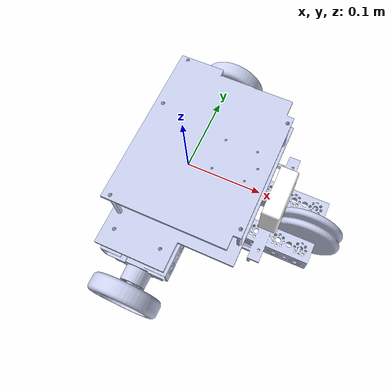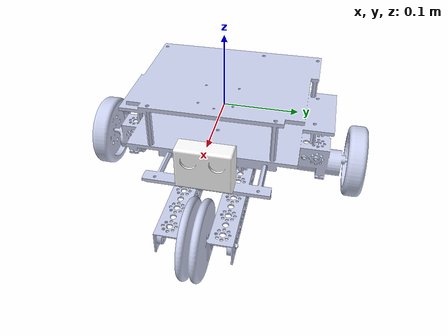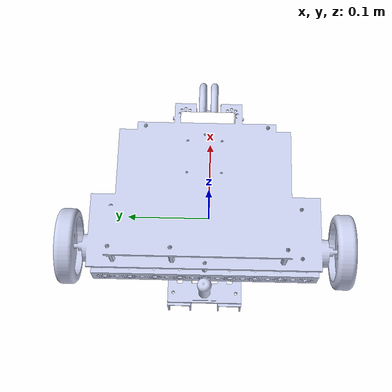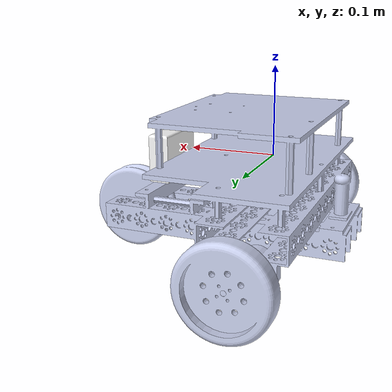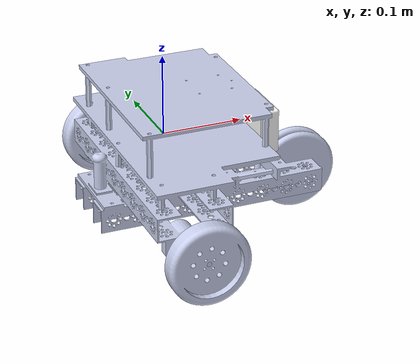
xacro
<?xml version="1.0"?>
<robot xmlns:xacro="http://www.ros.org/wiki/xacro"
  name="autobot">
  <link
    name="base_link">
    <inertial>
      <origin
        xyz="0.012692 0.0050409 -0.025738"
        rpy="0 0 0" />
      <mass
        value="0.8044" />
      <inertia
        ixx="0.0026664"
        ixy="1.82E-05"
        ixz="2.9353E-07"
        iyy="0.0015515"
        iyz="6.5283E-11"
        izz="0.0041284" />
    </inertial>
    <visual>
      <origin
        xyz="0 0 0"
        rpy="0 0 0" />
      <geometry>
        <mesh
          filename="package://autobot/meshes/base_link.STL" />
      </geometry>
      <material
        name="">
        <color
          rgba="0.79216 0.81961 0.93333 1" />
      </material>
    </visual>
    <collision>
      <origin
        xyz="0 0 0"
        rpy="0 0 0" />
      <geometry>
        <mesh
          filename="package://autobot/meshes/base_link.STL" />
      </geometry>
    </collision>
  </link>

<link name="right_wheel">
    <inertial>
        <origin xyz="-1.1077E-07 0.0035 -8.1377E-05" rpy="0 0 0" />
        <mass value="0.10364" />
        <inertia ixx="8.7625E-05" ixy="1.349E-18" ixz="-1.8576E-20" iyy="0.00016817" iyz="-3.0937E-19" izz="8.7625E-05" />
    </inertial>
    <visual>
        <origin xyz="0 0 0" rpy="0 0 0" />
        <geometry>
            <mesh filename="package://autobot/meshes/right_wheel.STL" />
        </geometry>
        <material name="">
            <color rgba="0.79608 0.82353 0.93725 1" />
        </material>
    </visual>
    <collision>
        <origin xyz="0 0 0" rpy="0 0 0" />
        <geometry>
            <mesh filename="package://autobot/meshes/right_wheel.STL" />
        </geometry>
    </collision>
</link>

<joint name="right_wheel_joint" type="continuous">
    <origin xyz="-0.016418 -0.18164 -0.079762" rpy="0 0 0" />
    <parent link="base_link" />
    <child link="right_wheel" />
    <axis xyz="0 1 0" /> <!-- Aligned with the y-axis -->
    <limit effort="10" velocity="10" />
    <dynamics damping="0.1" friction="0.1" />
</joint>

 <link name="left_wheel">
    <inertial>
        <origin xyz="-1.534E-06 -0.0035 -8.1363E-05" rpy="0 0 0" />
        <mass value="0.10364" />
        <inertia ixx="8.7625E-05" ixy="1.3327E-18" ixz="2.4026E-21" iyy="0.00016817" iyz="-2.6053E-19" izz="8.7625E-05" />
    </inertial>
    <visual>
        <origin xyz="0 0 0" rpy="0 0 0" />
        <geometry>
            <mesh filename="package://autobot/meshes/left_wheel.STL" />
        </geometry>
        <material name="">
            <color rgba="0.79608 0.82353 0.93725 1" />
        </material>
    </visual>
    <collision>
        <origin xyz="0 0 0" rpy="0 0 0" />
        <geometry>
            <mesh filename="package://autobot/meshes/left_wheel.STL" />
        </geometry>
    </collision>
</link>

<joint name="left_wheel_joint" type="continuous">
    <origin xyz="-0.015294 0.18886 -0.079763" rpy="0 0 0" />
    <parent link="base_link" />
    <child link="left_wheel" />
    <axis xyz="0 1 0" /> <!-- Aligned with the y-axis -->
    <limit effort="10" velocity="10" />
    <dynamics damping="0.1" friction="0.1" />
</joint>

 <link name="castor_wheels">
    <inertial>
        <origin xyz="5.5511E-17 7.6762E-16 4.1633E-17" rpy="0 0 0" />
        <mass value="0.4" />
        <inertia ixx="9.1441E-05" ixy="1.239E-18" ixz="3.9667E-21" iyy="0.00018051" iyz="-1.6989E-19" izz="9.1441E-05" />
    </inertial>
    <visual>
        <origin xyz="0 0 0" rpy="0 0 0" />
        <geometry>
            <mesh filename="package://autobot/meshes/castor_wheels.STL" />
        </geometry>
        <material name="">
            <color rgba="0.79216 0.81961 0.93333 1" />
        </material>
    </visual>
    <collision>
        <origin xyz="0 0 0" rpy="0 0 0" />
        <geometry>
            <mesh filename="package://autobot/meshes/castor_wheels.STL" />
        </geometry>
    </collision>
</link>

<joint name="castor_wheels_joint" type="continuous">
    <origin xyz="0.17607 0.003608 -0.079343" rpy="0 0 0" />
    <parent link="base_link" />
    <child link="castor_wheels" />
    <axis xyz="0 1 0" />
    <limit effort="10" velocity="10" />
    <dynamics damping="0.0" friction="0.0"/>

    <gazebo>
        <mu1>0.0</mu1>
        <mu2>0.0</mu2>

    </gazebo>
</joint>

  <link
    name="camera">
    <inertial>
      <origin
        xyz="0.0012481 5.1998E-08 0.027201"
        rpy="0 0 0" />
      <mass
        value="0.12075" />
      <inertia
        ixx="7.9562E-05"
        ixy="-9.7058E-11"
        ixz="2.8913E-07"
        iyy="3.6327E-05"
        iyz="1.351E-10"
        izz="5.533E-05" />
    </inertial>
    <visual>
      <origin
        xyz="0 0 0"
        rpy="0 0 0" />
      <geometry>
        <mesh
          filename="package://autobot/meshes/camera.STL" />
      </geometry>
      <material
        name="">
        <color
          rgba="1 1 1 1" />
      </material>
    </visual>
    <collision>
      <origin
        xyz="0 0 0"
        rpy="0 0 0" />
      <geometry>
        <mesh
          filename="package://autobot/meshes/camera.STL" />
      </geometry>
    </collision>
  </link>
  <joint
    name="camera_joint"
    type="fixed">
    <origin
      xyz="0.12456 0.003608 -0.035343"
      rpy="0 0 0" />
    <parent
      link="base_link" />
    <child
      link="camera" />
    <axis
      xyz="0 0 0" />
  </joint>
</robot>
